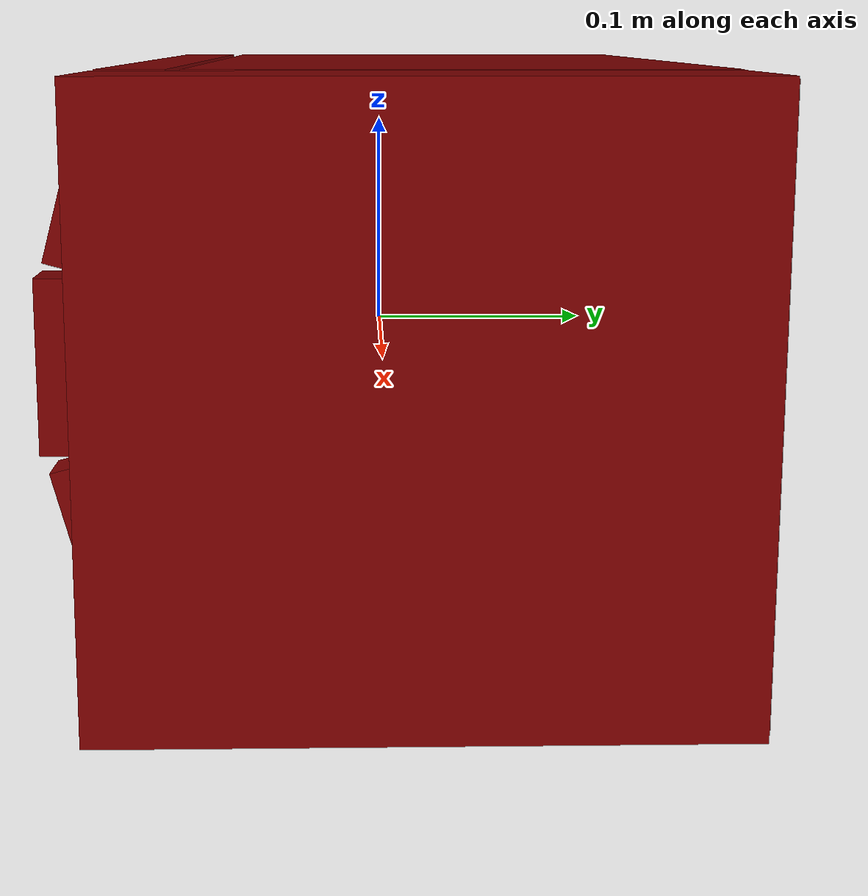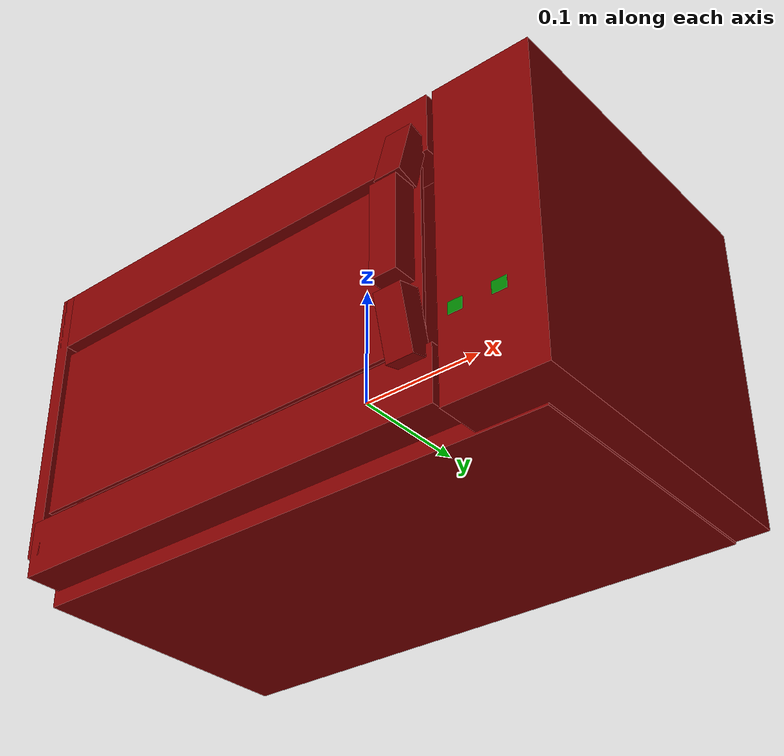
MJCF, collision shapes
<mujoco model="model">
  <compiler angle="radian"/>
  <asset>
    <mesh file="visuals/door.obj" name="door_vis"/>
    <mesh file="visuals/door_Clear.obj" name="door_Clear_vis"/>
    <mesh file="visuals/Body001.obj" name="Body001_vis"/>
    <mesh file="visuals/Disc001.obj" name="Disc001_vis"/>
    <texture file="visuals/T_BC001.png" name="Body001_material" type="2d"/>
    <material name="Body001_material" rgba="1 1 1 1.0" texture="Body001_material" shininess="0.4472135901451111" specular="0.3103448502657381"/>
    <texture file="visuals/T_BC001.png" name="door_material" type="2d"/>
    <material name="door_material" rgba="1 1 1 1.0" texture="door_material" shininess="0.4472135901451111" specular="0.3103448502657381"/>
    <texture file="visuals/T_BC001.png" name="door_Clear_material" type="2d"/>
    <material name="door_Clear_material" rgba="1 1 1 0.800000011920929" texture="door_Clear_material" shininess="0.5" specular="0.3103448502657381"/>
    <texture file="visuals/T_BC001.png" name="Disc001_material" type="2d"/>
    <material name="Disc001_material" rgba="1 1 1 1.0" texture="Disc001_material" shininess="0.4472135901451111" specular="0.3103448502657381"/>
  </asset>
  <default>
    <default class="visual">
      <geom conaffinity="0" contype="0" group="1" type="mesh"/>
    </default>
    <default class="collision">
      <geom group="0" rgba="0.5 0 0 0.5"/>
    </default>
    <default class="spawn">
      <geom group="0" rgba="1 1 1 0.5" contype="0" conaffinity="0"/>
      <site group="0" rgba="1 1 1 0.5"/>
    </default>
    <default class="region">
      <geom group="1" conaffinity="0" contype="0" rgba="0 1 0 0"/>
    </default>
  </default>
  <worldbody>
    <body>
      <body name="object">
        <geom class="collision" type="box" pos="-0.03252720460295677 0.02800842933356762 -0.0801408663392067" size="0.08457642048597336 0.08457642048597336 0.0012236254988238215" quat="1.0 0.0 0.0 0.0" name="tray" rgba="0 1 0 0.5"/>
        <geom class="collision" type="box" pos="0.16574476659297943 -0.1161891371011734 -0.055615391582250595" size="0.005486878100782633 0.0002612489624880254 0.004539588000625372" quat="1.0 0.0 0.0 0.0" name="stop_button" rgba="0.0 0.5 0 0.5"/>
        <geom class="collision" type="box" pos="0.19805380702018738 -0.11618360877037048 -0.055615391582250595" size="0.005571725312620401 0.0002571198856458068 0.00453959172591567" quat="1.0 0.0 0.0 0.0" name="start_button" rgba="0.0 0.5 0 0.5"/>
        <geom mesh="Body001_vis" type="mesh" solimp="0.998 0.998 0.001" solref="0.001 1" density="100" friction="0.95 0.3 0.1" class="visual" material="Body001_material"/>
        <geom class="collision" type="box" pos="-0.21844246983528137 0.031143829226493835 0.00512523390352726" size="0.010335021652281284 0.11223482340574265 0.12207884341478348" quat="1.0 0.0 0.0 0.0"/>
        <geom class="collision" type="box" pos="0.19061405956745148 0.013799410313367844 0.0025311363860964775" size="0.03860029578208923 0.12958019971847534 0.12467389553785324" quat="1.0 0.0 0.0 0.0"/>
        <geom class="collision" type="box" pos="-0.03283274546265602 0.031143829226493835 0.11826920509338379" size="0.1839221566915512 0.11223499476909637 0.009236342273652554" quat="1.0 0.0 0.0 0.0"/>
        <geom class="collision" type="box" pos="-0.012415529228746891 0.031143829226493835 -0.11103034764528275" size="0.21637071669101715 0.11223503202199936 0.012851656414568424" quat="1.0 0.0 0.0 0.0"/>
        <geom class="collision" type="box" pos="2.9534101486206055e-05 0.13505196571350098 0.004120539873838425" size="0.22785787284374237 0.008890122175216675 0.12200931459665298" quat="1.0 0.0 0.0 0.0"/>
        <body name="door">
          <joint axis="0.0 0.0 1.0" pos="-0.2127779722213745 -0.10114681720733643 0.004985462874174118" limited="true" name="microjoint" range="-1.5707963267948966 0.0" type="hinge" damping="1" frictionloss="1" armature=".01" stiffness="0.05"/>
          <geom mesh="door_vis" type="mesh" solimp="0.998 0.998 0.001" solref="0.001 1" density="100" friction="0.95 0.3 0.1" class="visual" material="door_material"/>
          <geom class="collision" type="box" pos="-0.03472866117954254 -0.10163944959640503 0.10321323573589325" size="0.18202747404575348 0.014235204085707664 0.02429230883717537" quat="1.0 0.0 0.0 0.0"/>
          <geom class="collision" type="box" pos="-0.03461878001689911 -0.10163944959640503 -0.09505046904087067" size="0.18213744461536407 0.014235207810997963 0.02170415222644806" quat="1.0 0.0 0.0 0.0"/>
          <geom class="collision" type="box" pos="-0.21376827359199524 -0.10163944959640503 0.013112497515976429" size="0.0059144748374819756 0.014235207810997963 0.11439303308725357" quat="1.0 0.0 0.0 0.0"/>
          <geom class="collision" type="box" pos="0.13258644938468933 -0.12506189942359924 0.0700845718383789" size="0.024160463362932205 0.009169811382889748 0.010521062649786472" quat="0.701056957244873 -0.09229596704244614 0.7010577917098999 -0.09229596704244614"/>
          <geom class="collision" type="box" pos="0.13258643448352814 -0.12531377375125885 -0.060699161142110825" size="0.02386256866157055 0.009169811382889748 0.010521062649786472" quat="0.701056957244873 0.09229596704244614 0.7010577917098999 0.09229596704244614"/>
          <geom class="collision" type="box" pos="0.13258644938468933 -0.13492943346500397 0.005155717022716999" size="0.010521060787141323 0.009169810451567173 0.03764721006155014" quat="1.0 0.0 0.0 0.0" name="door_handle"/>
          <body name="door_Clear">
            <geom mesh="door_Clear_vis" type="mesh" solimp="0.998 0.998 0.001" solref="0.001 1" density="100" friction="0.95 0.3 0.1" class="visual" material="door_Clear_material"/>
            <geom class="collision" type="box" pos="-0.03623191639780998 -0.11003593355417252 0.0035385815426707268" size="0.17416460812091827 0.0014627669006586075 0.06958451867103577" quat="1.0 0.0 0.0 0.0"/>
          </body>
        </body>
        <body name="Disc001">
          <joint axis="0.0 0.0 1.0" pos="-0.03252920135855675 0.028009189292788506 -0.08719247579574585" limited="false" name="Disc001_joint" range="0 360" type="hinge" damping="1" frictionloss="1" armature=".01" stiffness="0.05"/>
          <geom mesh="Disc001_vis" type="mesh" solimp="0.998 0.998 0.001" solref="0.001 1" density="100" friction="0.95 0.3 0.1" class="visual" material="Disc001_material"/>
          <geom class="collision" type="cylinder" pos="-0.03252720460295677 0.02800842933356762 -0.08911844342947006" size="0.07529140263795853 0.0036245048977434635" quat="1.0 0.0 0.0 0.0"/>
        </body>
        <geom class="region" name="reg_main" type="box" pos="3.725290298461914e-09 0.014033671468496323 1.4901161193847656e-08" size="0.2292143553495407 0.12990832328796387 0.12750552594661713"/>
        <geom class="region" name="reg_int" type="box" pos="-0.029035955667495728 0.019231729209423065 0.0036157481372356415" size="0.17535418272018433 0.09674987941980362 0.099669199436903"/>
      </body>
    </body>
  </worldbody>
  <actuator>
    <motor name="microjoint_actuator" joint="microjoint" gear="10"/>
    <motor name="Disc001_joint_actuator" joint="Disc001_joint" gear="10"/>
  </actuator>
</mujoco>
